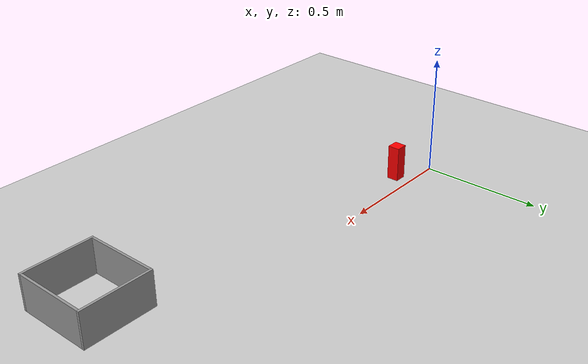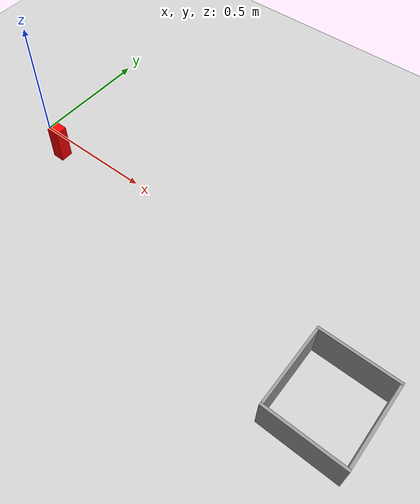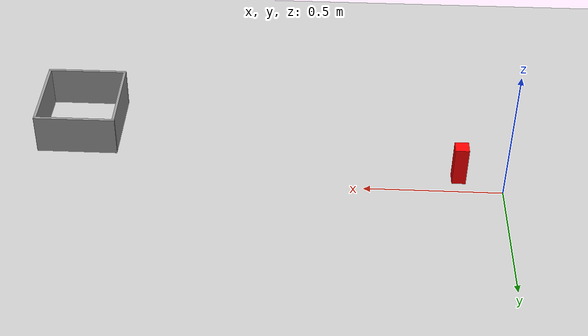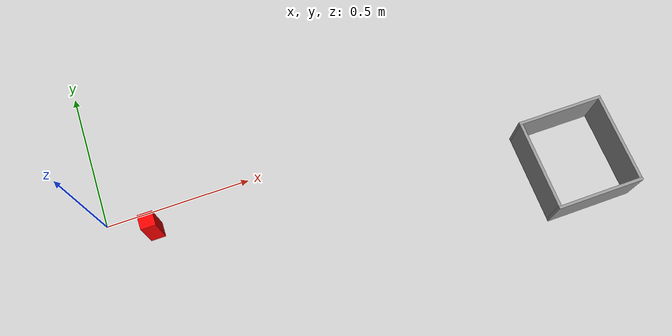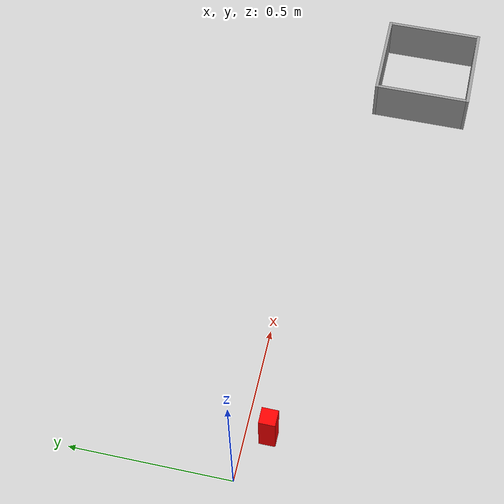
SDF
<sdf version="1.6">
 <world name="default">
  <model name="ground_plane">
   <static>1</static>
   <link name="link">
    <collision name="collision">
     <geometry><plane><normal>0 0 1</normal><size>100 100</size></plane></geometry>
     <surface><friction><ode><mu>100</mu><mu2>50</mu2></ode></friction></surface>
    </collision>
    <visual name="visual">
     <cast_shadows>0</cast_shadows>
     <geometry><plane><normal>0 0 1</normal><size>100 100</size></plane></geometry>
     <material>
      <script><uri>file://media/materials/scripts/gazebo.material</uri><name>Gazebo/Grey</name></script>
     </material>
    </visual>
   </link>
  </model>
  <model name="lego_box_clone_0">
   <link name="link_0">
    <pose>0 -0.145 0 0 -0 0</pose>
    <inertial>
     <mass>1</mass>
     <inertia>
      <ixx>0.166667</ixx>
      <ixy>0</ixy>
      <ixz>0</ixz>
      <iyy>0.166667</iyy>
      <iyz>0</iyz>
      <izz>0.166667</izz>
     </inertia>
    </inertial>
    <visual name="visual">
     <geometry><box><size>0.3 0.01 0.15</size></box></geometry>
     <material>
      <lighting>1</lighting>
      <script><uri>file://media/materials/scripts/gazebo.material</uri><name>Gazebo/Grey</name></script>
      <ambient>0.3 0.3 0.3 1</ambient>
      <diffuse>0.7 0.7 0.7 1</diffuse>
      <specular>0.01 0.01 0.01 1</specular>
      <emissive>0 0 0 1</emissive>
      <shader type="vertex"><normal_map>__default__</normal_map></shader>
     </material>
    </visual>
    <collision name="collision">
     <geometry><box><size>0.3 0.01 0.15</size></box></geometry>
     <surface>
      <friction>
       <ode><mu>1</mu><mu2>1</mu2><fdir1>0 0 0</fdir1><slip1>0</slip1><slip2>0</slip2></ode>
       <torsional>
        <coefficient>1</coefficient>
        <patch_radius>0</patch_radius>
        <surface_radius>0</surface_radius>
        <use_patch_radius>1</use_patch_radius>
        <ode><slip>0</slip></ode>
       </torsional>
      </friction>
      <bounce><restitution_coefficient>0</restitution_coefficient><threshold>1e+06</threshold></bounce>
      <contact>
       <collide_without_contact>0</collide_without_contact>
       <collide_without_contact_bitmask>1</collide_without_contact_bitmask>
       <collide_bitmask>1</collide_bitmask>
       <ode>
        <soft_cfm>0</soft_cfm>
        <soft_erp>0.2</soft_erp>
        <kp>1e+13</kp>
        <kd>1</kd>
        <max_vel>0.01</max_vel>
        <min_depth>0</min_depth>
       </ode>
       <bullet>
        <split_impulse>1</split_impulse>
        <split_impulse_penetration_threshold>-0.01</split_impulse_penetration_threshold>
        <soft_cfm>0</soft_cfm>
        <soft_erp>0.2</soft_erp>
        <kp>1e+13</kp>
        <kd>1</kd>
       </bullet>
      </contact>
     </surface>
    </collision>
   </link>
   <link name="link_0_clone">
    <pose>0 0.145 0 0 -0 0</pose>
    <inertial>
     <mass>1</mass>
     <inertia>
      <ixx>0.166667</ixx>
      <ixy>0</ixy>
      <ixz>0</ixz>
      <iyy>0.166667</iyy>
      <iyz>0</iyz>
      <izz>0.166667</izz>
     </inertia>
    </inertial>
    <visual name="visual">
     <geometry><box><size>0.3 0.01 0.15</size></box></geometry>
     <material>
      <lighting>1</lighting>
      <script><uri>file://media/materials/scripts/gazebo.material</uri><name>Gazebo/Grey</name></script>
      <ambient>0.3 0.3 0.3 1</ambient>
      <diffuse>0.7 0.7 0.7 1</diffuse>
      <specular>0.01 0.01 0.01 1</specular>
      <emissive>0 0 0 1</emissive>
      <shader type="vertex"><normal_map>__default__</normal_map></shader>
     </material>
    </visual>
    <collision name="collision">
     <geometry><box><size>0.3 0.01 0.15</size></box></geometry>
     <surface>
      <friction>
       <ode><mu>1</mu><mu2>1</mu2><fdir1>0 0 0</fdir1><slip1>0</slip1><slip2>0</slip2></ode>
       <torsional>
        <coefficient>1</coefficient>
        <patch_radius>0</patch_radius>
        <surface_radius>0</surface_radius>
        <use_patch_radius>1</use_patch_radius>
        <ode><slip>0</slip></ode>
       </torsional>
      </friction>
      <bounce><restitution_coefficient>0</restitution_coefficient><threshold>1e+06</threshold></bounce>
      <contact>
       <collide_without_contact>0</collide_without_contact>
       <collide_without_contact_bitmask>1</collide_without_contact_bitmask>
       <collide_bitmask>1</collide_bitmask>
       <ode>
        <soft_cfm>0</soft_cfm>
        <soft_erp>0.2</soft_erp>
        <kp>1e+13</kp>
        <kd>1</kd>
        <max_vel>0.01</max_vel>
        <min_depth>0</min_depth>
       </ode>
       <bullet>
        <split_impulse>1</split_impulse>
        <split_impulse_penetration_threshold>-0.01</split_impulse_penetration_threshold>
        <soft_cfm>0</soft_cfm>
        <soft_erp>0.2</soft_erp>
        <kp>1e+13</kp>
        <kd>1</kd>
       </bullet>
      </contact>
     </surface>
    </collision>
   </link>
   <link name="link_0_clone_1">
    <pose>-0.155 -0 0 0 -0 1.571</pose>
    <inertial>
     <mass>1</mass>
     <inertia>
      <ixx>0.166667</ixx>
      <ixy>0</ixy>
      <ixz>0</ixz>
      <iyy>0.166667</iyy>
      <iyz>0</iyz>
      <izz>0.166667</izz>
     </inertia>
    </inertial>
    <visual name="visual">
     <geometry><box><size>0.3 0.01 0.15</size></box></geometry>
     <material>
      <lighting>1</lighting>
      <script><uri>file://media/materials/scripts/gazebo.material</uri><name>Gazebo/Grey</name></script>
      <ambient>0.3 0.3 0.3 1</ambient>
      <diffuse>0.7 0.7 0.7 1</diffuse>
      <specular>0.01 0.01 0.01 1</specular>
      <emissive>0 0 0 1</emissive>
      <shader type="vertex"><normal_map>__default__</normal_map></shader>
     </material>
    </visual>
    <collision name="collision">
     <geometry><box><size>0.3 0.01 0.15</size></box></geometry>
     <surface>
      <friction>
       <ode><mu>1</mu><mu2>1</mu2><fdir1>0 0 0</fdir1><slip1>0</slip1><slip2>0</slip2></ode>
       <torsional>
        <coefficient>1</coefficient>
        <patch_radius>0</patch_radius>
        <surface_radius>0</surface_radius>
        <use_patch_radius>1</use_patch_radius>
        <ode><slip>0</slip></ode>
       </torsional>
      </friction>
      <bounce><restitution_coefficient>0</restitution_coefficient><threshold>1e+06</threshold></bounce>
      <contact>
       <collide_without_contact>0</collide_without_contact>
       <collide_without_contact_bitmask>1</collide_without_contact_bitmask>
       <collide_bitmask>1</collide_bitmask>
       <ode>
        <soft_cfm>0</soft_cfm>
        <soft_erp>0.2</soft_erp>
        <kp>1e+13</kp>
        <kd>1</kd>
        <max_vel>0.01</max_vel>
        <min_depth>0</min_depth>
       </ode>
       <bullet>
        <split_impulse>1</split_impulse>
        <split_impulse_penetration_threshold>-0.01</split_impulse_penetration_threshold>
        <soft_cfm>0</soft_cfm>
        <soft_erp>0.2</soft_erp>
        <kp>1e+13</kp>
        <kd>1</kd>
       </bullet>
      </contact>
     </surface>
    </collision>
   </link>
   <link name="link_0_clone_2">
    <pose>0.155 -0 0 0 0 -1.571</pose>
    <inertial>
     <mass>1</mass>
     <inertia>
      <ixx>0.166667</ixx>
      <ixy>0</ixy>
      <ixz>0</ixz>
      <iyy>0.166667</iyy>
      <iyz>0</iyz>
      <izz>0.166667</izz>
     </inertia>
    </inertial>
    <visual name="visual">
     <geometry><box><size>0.3 0.01 0.15</size></box></geometry>
     <material>
      <lighting>1</lighting>
      <script><uri>file://media/materials/scripts/gazebo.material</uri><name>Gazebo/Grey</name></script>
      <ambient>0.3 0.3 0.3 1</ambient>
      <diffuse>0.7 0.7 0.7 1</diffuse>
      <specular>0.01 0.01 0.01 1</specular>
      <emissive>0 0 0 1</emissive>
      <shader type="vertex"><normal_map>__default__</normal_map></shader>
     </material>
    </visual>
    <collision name="collision">
     <geometry><box><size>0.3 0.01 0.15</size></box></geometry>
     <surface>
      <friction>
       <ode><mu>1</mu><mu2>1</mu2><fdir1>0 0 0</fdir1><slip1>0</slip1><slip2>0</slip2></ode>
       <torsional>
        <coefficient>1</coefficient>
        <patch_radius>0</patch_radius>
        <surface_radius>0</surface_radius>
        <use_patch_radius>1</use_patch_radius>
        <ode><slip>0</slip></ode>
       </torsional>
      </friction>
      <bounce><restitution_coefficient>0</restitution_coefficient><threshold>1e+06</threshold></bounce>
      <contact>
       <collide_without_contact>0</collide_without_contact>
       <collide_without_contact_bitmask>1</collide_without_contact_bitmask>
       <collide_bitmask>1</collide_bitmask>
       <ode>
        <soft_cfm>0</soft_cfm>
        <soft_erp>0.2</soft_erp>
        <kp>1e+13</kp>
        <kd>1</kd>
        <max_vel>0.01</max_vel>
        <min_depth>0</min_depth>
       </ode>
       <bullet>
        <split_impulse>1</split_impulse>
        <split_impulse_penetration_threshold>-0.01</split_impulse_penetration_threshold>
        <soft_cfm>0</soft_cfm>
        <soft_erp>0.2</soft_erp>
        <kp>1e+13</kp>
        <kd>1</kd>
       </bullet>
      </contact>
     </surface>
    </collision>
   </link>
   <joint name="link_0_JOINT_0" type="fixed">
    <parent>link_0</parent>
    <child>link_0_clone_1</child>
    <physics>
     <ode><limit><cfm>0</cfm><erp>0.2</erp></limit><suspension><cfm>0</cfm><erp>0.2</erp></suspension></ode>
    </physics>
   </joint>
   <joint name="link_0_JOINT_1" type="fixed">
    <parent>link_0</parent>
    <child>link_0_clone_2</child>
    <physics>
     <ode><limit><cfm>0</cfm><erp>0.2</erp></limit><suspension><cfm>0</cfm><erp>0.2</erp></suspension></ode>
    </physics>
   </joint>
   <joint name="link_0_JOINT_2" type="fixed">
    <parent>link_0</parent>
    <child>link_0_clone</child>
    <physics>
     <ode><limit><cfm>0</cfm><erp>0.2</erp></limit><suspension><cfm>0</cfm><erp>0.2</erp></suspension></ode>
    </physics>
   </joint>
   <static>0</static>
   <pose>1.56683 -0.320082 0.075 0 0 -1.57083</pose>
  </model>
  <model name="red_block">
   <link name="link">
    <inertial>
     <mass>1</mass>
     <inertia>
      <ixx>0.166667</ixx>
      <ixy>0</ixy>
      <ixz>0</ixz>
      <iyy>0.166667</iyy>
      <iyz>0</iyz>
      <izz>0.166667</izz>
     </inertia>
    </inertial>
    <visual name="visual">
     <geometry><box><size>0.05 0.05 0.15</size></box></geometry>
     <material>
      <script><name>Gazebo/Grey</name><uri>file://media/materials/scripts/gazebo.material</uri></script>
      <ambient>1 0 0 1</ambient>
      <diffuse>1 0 0 1</diffuse>
      <specular>0.01 0.01 0.01 1</specular>
      <emissive>0 0 0 1</emissive>
      <shader type="vertex"><normal_map>__default__</normal_map></shader>
     </material>
    </visual>
    <collision name="collision">
     <geometry><box><size>0.05 0.05 0.15</size></box></geometry>
     <surface>
      <friction>
       <ode><mu>1</mu><mu2>1</mu2><fdir1>0 0 0</fdir1><slip1>0</slip1><slip2>0</slip2></ode>
       <torsional>
        <coefficient>1</coefficient>
        <patch_radius>0</patch_radius>
        <surface_radius>0</surface_radius>
        <use_patch_radius>1</use_patch_radius>
        <ode><slip>0</slip></ode>
       </torsional>
      </friction>
      <bounce><restitution_coefficient>0</restitution_coefficient><threshold>1e+06</threshold></bounce>
      <contact>
       <collide_without_contact>0</collide_without_contact>
       <collide_without_contact_bitmask>1</collide_without_contact_bitmask>
       <collide_bitmask>1</collide_bitmask>
       <ode>
        <soft_cfm>0</soft_cfm>
        <soft_erp>0.2</soft_erp>
        <kp>1e+13</kp>
        <kd>1</kd>
        <max_vel>0.01</max_vel>
        <min_depth>0</min_depth>
       </ode>
       <bullet>
        <split_impulse>1</split_impulse>
        <split_impulse_penetration_threshold>-0.01</split_impulse_penetration_threshold>
        <soft_cfm>0</soft_cfm>
        <soft_erp>0.2</soft_erp>
        <kp>1e+13</kp>
        <kd>1</kd>
       </bullet>
      </contact>
     </surface>
    </collision>
   </link>
   <static>0</static>
   <pose>0.154778 -0.070951 0.075001 -4.1e-05 -1e-06 -3.5e-05</pose>
  </model>
 </world>
</sdf>
